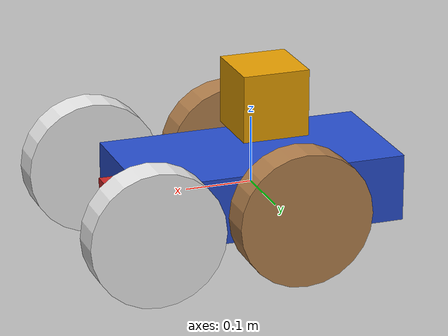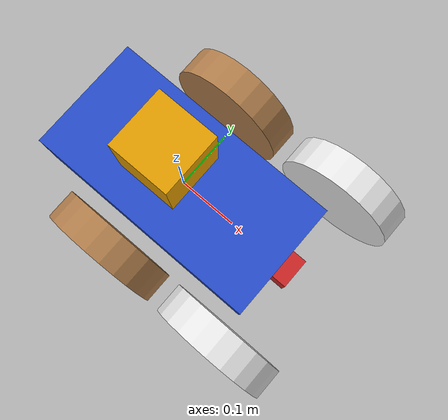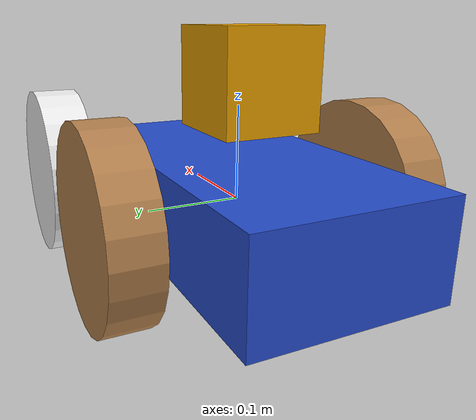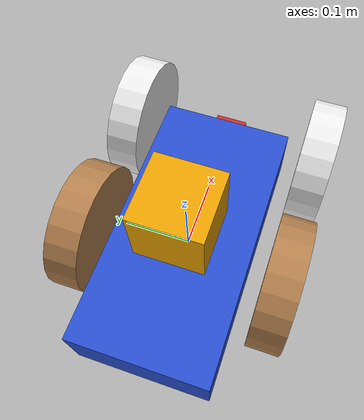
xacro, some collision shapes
<?xml version='1.0'?>

<robot name="my_robot" xmlns:xacro="http://www.ros.org/wiki/xacro">

  <xacro:include filename="$(find my_robot)/urdf/my_robot.gazebo" />

  <link name="robot_footprint"></link>

  <joint name="robot_footprint_joint" type="fixed">
    <origin xyz="0 0 0" rpy="0 0 0" />
    <parent link="robot_footprint"/>
    <child link="chassis" />
  </joint>

  <link name='chassis'>
    <pose>0 0 0.1 0 0 0</pose>

    <inertial>
      <mass value="15.0"/>
      <origin xyz="0.0 0 0" rpy=" 0 0 0"/>
      <inertia
          ixx="0.1" ixy="0" ixz="0"
          iyy="0.1" iyz="0"
          izz="0.1"
      />
    </inertial>

    <collision name='collision'>
      <origin xyz="0 0 0" rpy=" 0 0 0"/>
      <geometry>
        <box size=".4 .2 .1"/>
      </geometry>
    </collision>

    <visual name='chassis_visual'>
      <origin xyz="0 0 0" rpy=" 0 0 0"/>
      <geometry>
        <box size=".4 .2 .1"/>
      </geometry>
    </visual>
  </link>

  <link name="left_front_wheel">
    <pose>0 0 0 0 0 0</pose>

    <inertial>
      <mass value="5.0"/>
      <origin xyz="0.0 0 0" rpy="0 1.5707 1.5707"/>
      <inertia
          ixx="0.1" ixy="0" ixz="0"
          iyy="0.1" iyz="0"
          izz="0.1"
      />
    </inertial>

    <collision>
      <origin xyz="0 0 0" rpy="0 1.5707 1.5707"/>
      <geometry>
        <cylinder radius="0.1" length="0.05"/>
      </geometry>
    </collision>

    <visual>
      <origin xyz="0 0 0" rpy="0 1.5707 1.5707"/>
      <geometry>
        <cylinder radius="0.1" length="0.05"/>
      </geometry>
    </visual>
  </link>

  <joint type="continuous" name="left_front_wheel_hinge">
    <origin xyz="0.2 0.15 0" rpy="0 0 0"/>
    <child link="left_front_wheel"/>
    <parent link="chassis"/>
    <axis xyz="0 1 0" rpy="0 0 0"/>
    <limit effort="10000" velocity="1000"/>
    <dynamics damping="1.0" friction="1.0"/>
  </joint>

  <link name="right_front_wheel">
    <pose>0 0 0 0 0 0</pose>

    <inertial>
      <mass value="5.0"/>
      <origin xyz="0.0 0 0" rpy="0 1.5707 1.5707"/>
      <inertia
          ixx="0.1" ixy="0" ixz="0"
          iyy="0.1" iyz="0"
          izz="0.1"
      />
    </inertial>

    <collision>
      <origin xyz="0 0 0" rpy="0 1.5707 1.5707"/>
      <geometry>
        <cylinder radius="0.1" length="0.05"/>
      </geometry>
    </collision>

    <visual>
      <origin xyz="0 0 0" rpy="0 1.5707 1.5707"/>
      <geometry>
        <cylinder radius="0.1" length="0.05"/>
      </geometry>
    </visual>
  </link>

  <joint type="continuous" name="right_front_wheel_hinge">
    <origin xyz="0.2 -0.15 0" rpy="0 0 0"/>
    <child link="right_front_wheel"/>
    <parent link="chassis"/>
    <axis xyz="0 1 0" rpy="0 0 0"/>
    <limit effort="10000" velocity="1000"/>
    <dynamics damping="1.0" friction="1.0"/>
  </joint>

  <link name="left_back_wheel">
    <pose>0 0 0 0 0 0</pose>

    <inertial>
      <mass value="5.0"/>
      <origin xyz="0.0 0 0" rpy="0 1.5707 1.5707"/>
      <inertia
          ixx="0.1" ixy="0" ixz="0"
          iyy="0.1" iyz="0"
          izz="0.1"
      />
    </inertial>

    <collision>
      <origin xyz="0 0 0" rpy="0 1.5707 1.5707"/>
      <geometry>
        <cylinder radius="0.1" length="0.05"/>
      </geometry>
    </collision>

    <visual>
      <origin xyz="0 0 0" rpy="0 1.5707 1.5707"/>
      <geometry>
        <cylinder radius="0.1" length="0.05"/>
      </geometry>
    </visual>
  </link>

  <joint type="continuous" name="left_back_wheel_hinge">
    <origin xyz="-0.02 0.15 0" rpy="0 0 0"/>
    <child link="left_back_wheel"/>
    <parent link="chassis"/>
    <axis xyz="0 1 0" rpy="0 0 0"/>
    <limit effort="10000" velocity="1000"/>
    <dynamics damping="1.0" friction="1.0"/>
  </joint>

  <link name="right_back_wheel">
    <pose>0 0 0 0 0 0</pose>

    <inertial>
      <mass value="5.0"/>
      <origin xyz="0.0 0 0" rpy="0 1.5707 1.5707"/>
      <inertia
          ixx="0.1" ixy="0" ixz="0"
          iyy="0.1" iyz="0"
          izz="0.1"
      />
    </inertial>

    <collision>
      <origin xyz="0 0 0" rpy="0 1.5707 1.5707"/>
      <geometry>
        <cylinder radius="0.1" length="0.05"/>
      </geometry>
    </collision>

    <visual>
      <origin xyz="0 0 0" rpy="0 1.5707 1.5707"/>
      <geometry>
        <cylinder radius="0.1" length="0.05"/>
      </geometry>
    </visual>
  </link>

  <joint type="continuous" name="right_back_wheel_hinge">
    <origin xyz="-0.02 -0.15 0" rpy="0 0 0"/>
    <child link="right_back_wheel"/>
    <parent link="chassis"/>
    <axis xyz="0 1 0" rpy="0 0 0"/>
    <limit effort="10000" velocity="1000"/>
    <dynamics damping="1.0" friction="1.0"/>
  </joint>

  <link name="camera">
    <imageTopicName>rgb/image_raw</imageTopicName>
    <pose>0 0 0 0 0 0</pose>

    <inertial>
      <mass value="0.1"/>
      <origin xyz="0 0 0" rpy="0 0 0"/>
      <inertia
          ixx="1e-6" ixy="0" ixz="0"
          iyy="1e-6" iyz="0"
          izz="1e-6"
      />
    </inertial>

    <collision>
      <origin xyz="0 0 0" rpy="0 0 0"/>
      <geometry>
        <box size=".05 .05 .05"/>
      </geometry>
    </collision>

    <visual>
      <origin xyz="0 0 0" rpy="0 0 0"/>
      <geometry>
        <box size=".05 .05 .05"/>
      </geometry>
    </visual>
  </link>

  <joint type="fixed" name="camera_joint">
    <origin xyz="0.2 0 0" rpy="0 0 0"/>
    <child link="camera"/>
    <parent link="chassis"/>
    <axis xyz="0 1 0" rpy="0 0 0"/>
  </joint>

  <joint name="camera_optical_joint" type="fixed">
    <origin xyz="0 0 0" rpy="-1.5707 0 -1.5707"/>
    <parent link="camera"/>
    <child link="camera_link_optical"/>
  </joint>

  <link name="camera_link_optical">
  </link>

  <link name="hokuyo">
    <pose>0 0 0 0 0 0</pose>

    <inertial>
      <mass value="1e-5"/>
      <origin xyz="0 0 0" rpy="0 0 0"/>
      <inertia
          ixx="1e-6" ixy="0" ixz="0"
          iyy="1e-6" iyz="0"
          izz="1e-6"
      />
    </inertial>

    <collision>
      <origin xyz="0 0 0" rpy="0 0 0"/>
      <geometry>
        <box size=".1 .1 .1"/>
      </geometry>
    </collision>

    <visual>
      <origin xyz="0 0 0" rpy="0 0 0"/>
      <geometry>
        <mesh filename="package://my_robot/meshes/hokuyo.dae"/>
      </geometry>
    </visual>
  </link>

  <joint type="fixed" name="hokuyo_joint">
    <origin xyz="-0.02 0 0.13" rpy="0 0 0"/>
    <child link="hokuyo"/>
    <parent link="chassis"/>
    <axis xyz="0 1 0" rpy="0 0 0"/>
  </joint>

  <!--
      URDF doesn't support customized friction on links. So we have to use the
      workaround provided by Gazebo. Details can be found in:
      http://gazebosim.org/tutorials?tut=ros_urdf
    -->
  <gazebo reference="left_front_wheel">
    <material>Gazebo/White</material>
    <mu1>0.01</mu1>
    <mu2>0.01</mu2>
  </gazebo>

  <gazebo reference="right_front_wheel">
    <material>Gazebo/White</material>
    <mu1>0.01</mu1>
    <mu2>0.01</mu2>
  </gazebo>

  <gazebo reference="left_back_wheel">
    <material>Gazebo/Wood</material>
  </gazebo>

  <gazebo reference="right_back_wheel">
    <material>Gazebo/Wood</material>
  </gazebo>

  <gazebo reference="chassis">
    <material>Gazebo/Blue</material>
  </gazebo>

  <gazebo reference="camera">
    <material>Gazebo/Red</material>
  </gazebo>

</robot>
